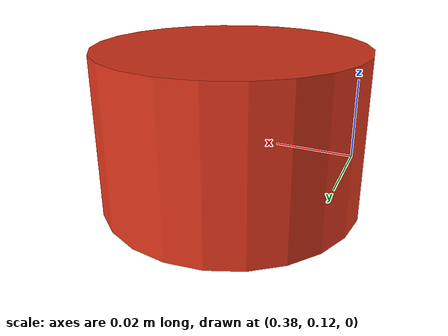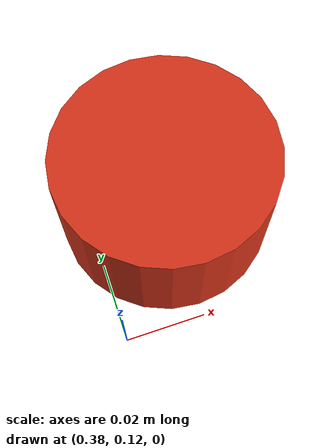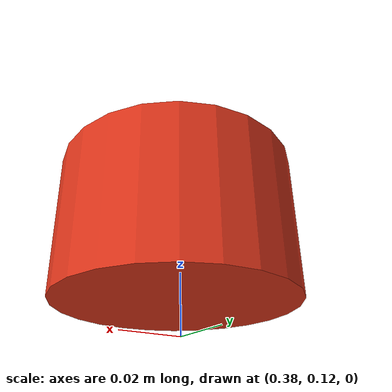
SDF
<?xml version="1.0"?>
<sdf version="1.6">
  <model name="roulette">
    <!-- pose par défaut : dans l'espace de travail du bras (repère monde ≈ base) -->
    <pose>0.4 0.15 0.016 0 0 0</pose>
    <!-- piloté en cinématique par le gripper_shim via set_pose (cf. VLA_PROGRESS).
         Dynamique (sinon set_pose ne le déplace pas) + gravité OFF (sinon il tombe). -->
    <link name="link">
      <gravity>false</gravity>
      <kinematic>true</kinematic>
      <inertial>
        <mass>0.05</mass>
        <!-- inertie laissée approx. r≈0.027 (négligeable : objet kinematic + gravité OFF,
             piloté par set_pose → l'inertie n'intervient pas dans la sim). -->
        <inertia>
          <ixx>1.372e-5</ixx>
          <iyy>1.372e-5</iyy>
          <izz>1.891e-5</izz>
          <ixy>0</ixy>
          <ixz>0</ixz>
          <iyz>0</iyz>
        </inertia>
      </inertial>
      <collision name="collision">
        <geometry>
          <cylinder>
            <radius>0.027</radius>
            <length>0.032</length>
          </cylinder>
        </geometry>
        <surface>
          <friction>
            <ode>
              <mu>1.0</mu>
              <mu2>1.0</mu2>
            </ode>
          </friction>
        </surface>
      </collision>
      <visual name="visual">
        <geometry>
          <cylinder>
            <radius>0.027</radius>
            <length>0.032</length>
          </cylinder>
        </geometry>
        <material>
          <ambient>0.85 0.20 0.10 1</ambient>
          <diffuse>0.85 0.20 0.10 1</diffuse>
          <specular>0.2 0.2 0.2 1</specular>
        </material>
      </visual>
    </link>
  </model>
</sdf>
